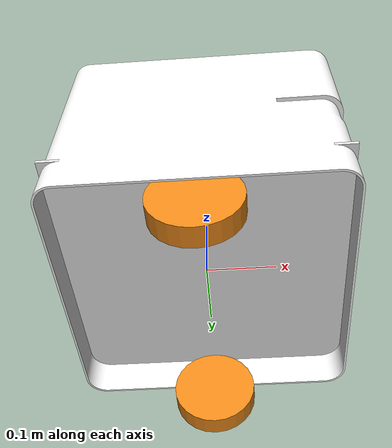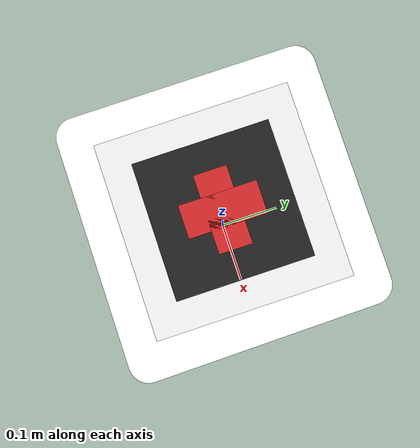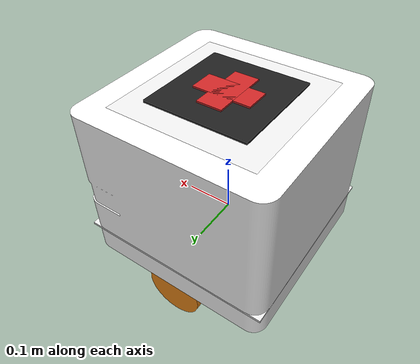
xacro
<?xml version="1.0"?>

<robot name="box_robot"
       xmlns:xacro="http://ros.org/wiki/xacro"
       xmlns:controller="http://playerstage.sourceforge.net/gazebo/xmlschema/#controller"
       xmlns:interface="http://playerstage.sourceforge.net/gazebo/xmlschema/#interface"
       xmlns:sensor="http://playerstage.sourceforge.net/gazebo/xmlschema/#sensor">

   <!-- Define a number of dimensions using properties -->
   <xacro:property name="torso_offset_x" value="0.0" />
   <xacro:property name="torso_offset_y" value="0.0" />
   <xacro:property name="torso_offset_z" value="0.23" /> <!--base_height/2+torso_height/2 -->

   <!-- Include all component files -->
   <xacro:include filename="$(find description)/urdf/dashgobase/materials.urdf.xacro" />
   <xacro:include filename="$(find description)/urdf/dashgobase/base2.urdf.xacro" />
   <xacro:include filename="$(find description)/urdf/dashgobase/torso.urdf.xacro" />

   <!-- Add the base and wheels -->
   <base name="base" color="Black"/>

   <!-- Attach the torso -->

<link name="red_cross">
      <visual>
        <origin xyz="0 0 0" rpy="0 0 0" />
        <geometry>
          <box size="0.12 0.051 0.01" />
        </geometry>
        <material name="Red" />
      </visual>
  </link>

  <joint name="red_middle_cross" type="fixed">
    <origin xyz="0 0 ${base_length+0.131}" rpy="0 0 0" />
    <parent link="base_link"/>
    <child link="red_cross" />
  </joint>

  <link name="red_cross2">
      <visual>
        <origin xyz="0 0 0" rpy="0 0 0" />
        <geometry>
          <box size="0.051 0.12 0.01" />
        </geometry>
        <material name="Red" />
      </visual>
  </link>

  <joint name="red_middle_cross2" type="fixed">
    <origin xyz="0 0 ${base_length+0.131}" rpy="0 0 0" />
    <parent link="base_link"/>
    <child link="red_cross2" />
  </joint>

  <link name="white_square">
      <visual>
        <origin xyz="0 0 0" rpy="0 0 0" />
        <geometry>
          <box size="0.21 0.21 0.005" />
        </geometry>
        <material name="Black" />
      </visual>
  </link>

  <joint name="white_middle_square" type="fixed">
    <origin xyz="0 0 ${base_length+0.13}" rpy="0 0 0" />
    <parent link="base_link"/>
    <child link="white_square" />
  </joint>

  <link name="pillar1">
      <visual>
        <origin xyz="0 0 0" rpy="0 0 0" />
        <geometry>
          <box size="0.018 0.018 0.24" />
        </geometry>
        <material name="White" />
      </visual>
  </link>

  <joint name="pollar_rb_1" type="fixed">
    <origin xyz="-0.142 -0.118 ${base_length}" rpy="0 0 0" />
    <parent link="base_link"/>
    <child link="pillar1" />
  </joint>

  <link name="pillar2">
      <visual>
        <origin xyz="0 0 0" rpy="0 0 0" />
        <geometry>
          <box size="0.018 0.018 0.24" />
        </geometry>
        <material name="White" />
      </visual>
  </link>

  <joint name="pollar_rb_2" type="fixed">
    <origin xyz="-0.142 0.118 ${base_length}" rpy="0 0 0" />
    <parent link="base_link"/>
    <child link="pillar2" />
  </joint>

  <link name="top_disc">
      <visual>
        <origin xyz="0 0 0" rpy="0 0 0" />
        <geometry>
          <box size="0.30 0.30 0.01"/>
        </geometry>
        <material name="White" />
      </visual>
  </link>

  <joint name="top_t_disc" type="fixed">
    <origin xyz="0 0 ${base_length+0.12}" rpy="0 0 0" />
    <parent link="base_link"/>
    <child link="top_disc" />
  </joint>

  <link name="laser">
      <visual>
        <origin xyz="0 0 0" rpy="0 0 0" />
        <geometry>
          <box size="0.05 0.05 0.05"/>
        </geometry>
        <material name="Black" />
      </visual>
  </link>-->

  <joint name="top_t_laser" type="fixed">
    <origin xyz="0.1675 0 0.1" rpy="0 0 0" />

    <parent link="base_link"/>
    <child link="laser" />
  </joint>

</robot>

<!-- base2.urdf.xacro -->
<robot name="base" xmlns:xacro="http://ros.org/wiki/xacro">

  <!-- Define a number of dimensions using properties -->
  <xacro:property name="base_length" value="0.15" />
  <xacro:property name="base_radius" value="0.18" />
  <xacro:property name="wheel_length" value="0.03" />
  <xacro:property name="wheel_radius" value="0.0595" />
  <xacro:property name="wheel_offset_x" value="0.0" />
  <xacro:property name="wheel_offset_y" value="0.18" />
  <xacro:property name="wheel_offset_z" value="-0.08" />

  <xacro:property name="PI" value="3.1415926" />

  <!-- define a wheel -->
  <xacro:macro name="wheel" params="suffix parent reflect color">
    <joint name="${parent}_${suffix}_wheel_joint" type="continuous">
      <axis xyz="0 0 1" />
      <limit effort="100" velocity="100"/>
      <safety_controller k_velocity="10" />
      <origin xyz="${wheel_offset_x} ${reflect*wheel_offset_y} ${wheel_offset_z}" rpy="${reflect*PI/2} 0 0" />
      <parent link="${parent}_link"/>
      <child link="${parent}_${suffix}_wheel_link"/>
    </joint>
    <link name="${parent}_${suffix}_wheel_link">
      <visual>
        <origin xyz="0 0 0" rpy="0 0 0" />
        <geometry>
          <cylinder radius="${wheel_radius}" length="${wheel_length}"/>
        </geometry>
        <material name="${color}" />
      </visual>
    </link>
  </xacro:macro>

  <!-- The base xacro macro -->
  <xacro:macro name="base" params="name color">
    <link name="${name}_link">

              <visual>
      <origin rpy="0.0 0 0" xyz="0 0 0"/>
      <geometry>
        <mesh filename="package://description/meshes/base3.dae"/>
      </geometry>
    </visual>
<visual>
            <origin xyz="0 0 0" rpy="0 0 0"/>
            <geometry>
                <box size="0.40 0.40 0.005"/>
            </geometry>
            <material name="White"/>
        </visual>

        <collision>
            <origin xyz="0 0 0" rpy="0 0 0"/>
            <geometry>
                <cylinder length="${base_length}" radius="${base_radius}"/>
            </geometry>
        </collision>
    </link>
  </xacro:macro>

  <link name="base_imu_link">
      <visual>
        <origin xyz="0 0 0" rpy="0 0 0" />
        <geometry>
          <box size="0.05 0.05 0.001" />
        </geometry>
        <material name="Red" />
      </visual>
  </link>

  <joint name="base_imu_joint" type="fixed">

    <origin xyz="0 0 0.05" rpy="0 0 1.57" />

    <origin xyz="0.085 0.1 0.1" rpy="0 0 0" />
    <parent link="base_link"/>
    <child link="base_imu_link" />
  </joint>

   <!-- Add the drive wheels -->
   <wheel parent="base" suffix="l" reflect="1" color="Orange"/>
   <wheel parent="base" suffix="r" reflect="-1" color="Orange"/>

</robot>
